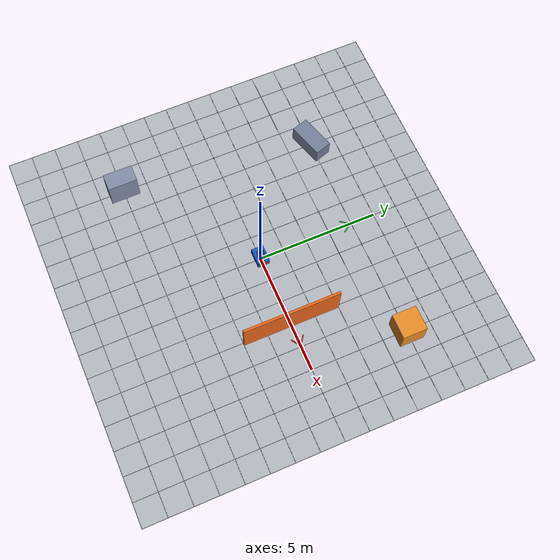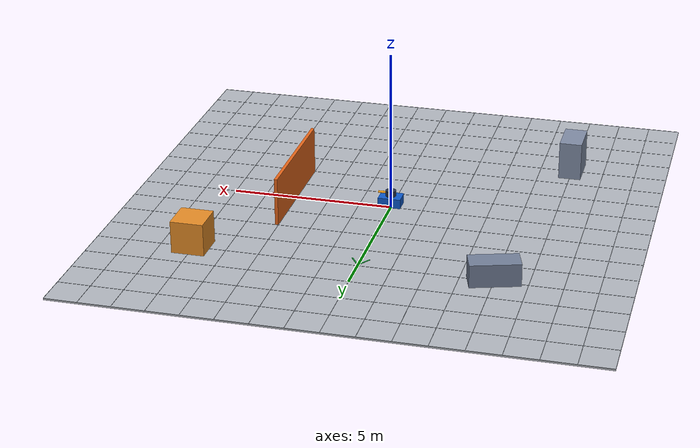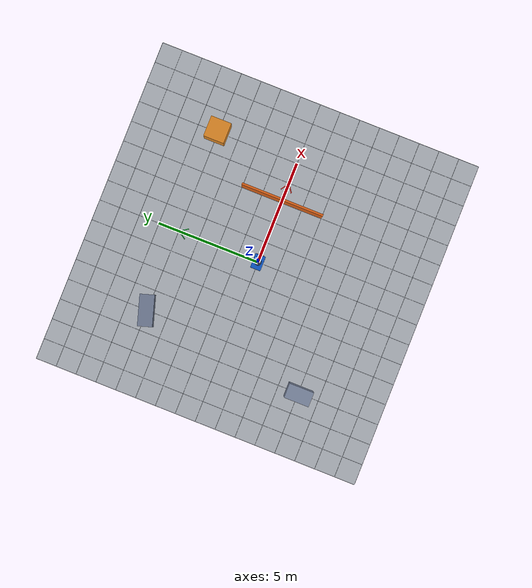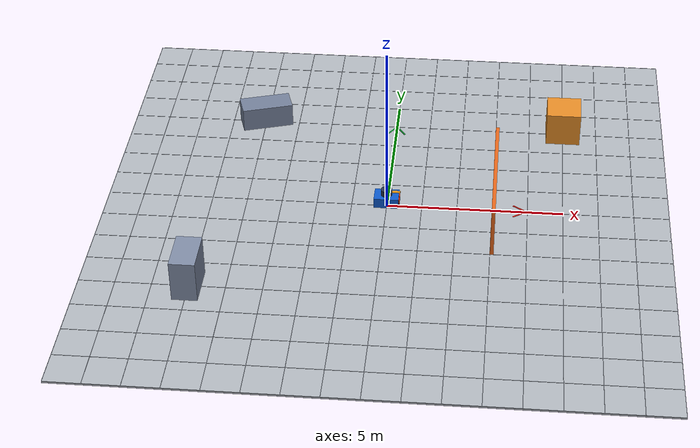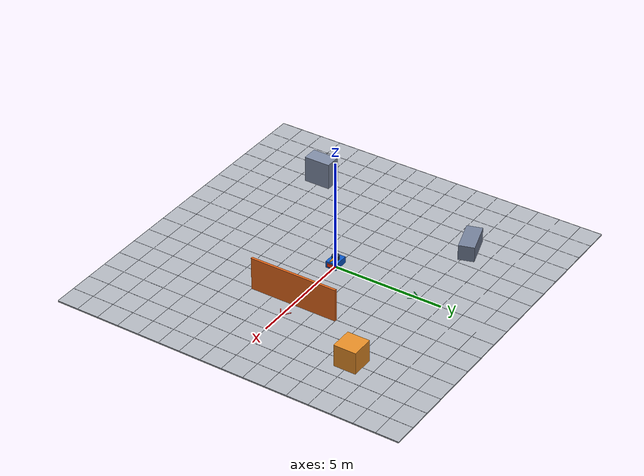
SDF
<?xml version='1.0' encoding='utf-8'?>
<sdf version="1.8">
  <!--Generated by lidar_assets.py: sensor feasibility world and known x=3 m wall.-->
  <world name="sentry_probe">
    <physics name="fixed_step" type="ignored">
      <max_step_size>0.01</max_step_size>
      <real_time_factor>1</real_time_factor>
    </physics>
    <gravity>0 0 0</gravity>
    <plugin filename="ignition-gazebo-physics-system" name="ignition::gazebo::systems::Physics" />
    <plugin filename="ignition-gazebo-user-commands-system" name="ignition::gazebo::systems::UserCommands" />
    <plugin filename="ignition-gazebo-scene-broadcaster-system" name="ignition::gazebo::systems::SceneBroadcaster" />
    <scene>
      <ambient>0.65 0.65 0.65 1</ambient>
      <background>0.82 0.86 0.9 1</background>
      <shadows>false</shadows>
    </scene>
    <light name="sun" type="directional">
      <pose>0 0 10 0 0 0</pose>
      <diffuse>0.8 0.8 0.8 1</diffuse>
      <specular>0.1 0.1 0.1 1</specular>
      <direction>-0.3 0.2 -1</direction>
      <cast_shadows>false</cast_shadows>
    </light>
    <gui fullscreen="false">
      <plugin filename="MinimalScene" name="3D View">
        <ignition-gui>
          <title>RM Sentry - Basic Navigation</title>
          <property type="bool" key="showTitleBar">false</property>
          <property type="string" key="state">docked</property>
        </ignition-gui>
        <engine>ogre2</engine>
        <scene>scene</scene>
        <ambient_light>0.65 0.65 0.65</ambient_light>
        <background_color>0.82 0.86 0.9</background_color>
        <camera_pose>4 -5 4.5 0 0.61 2.245</camera_pose>
      </plugin>
      <plugin filename="GzSceneManager" name="Scene Manager">
        <ignition-gui>
          <property type="bool" key="resizable">false</property>
          <property type="double" key="width">5</property>
          <property type="double" key="height">5</property>
          <property type="string" key="state">floating</property>
          <property type="bool" key="showTitleBar">false</property>
        </ignition-gui>
      </plugin>
      <plugin filename="InteractiveViewControl" name="View Control">
        <ignition-gui>
          <property type="bool" key="resizable">false</property>
          <property type="double" key="width">5</property>
          <property type="double" key="height">5</property>
          <property type="string" key="state">floating</property>
          <property type="bool" key="showTitleBar">false</property>
        </ignition-gui>
      </plugin>
      <plugin filename="WorldControl" name="World Control">
        <ignition-gui>
          <property type="bool" key="showTitleBar">false</property>
          <property type="string" key="state">floating</property>
          <property type="double" key="width">120</property>
          <property type="double" key="height">65</property>
          <property type="double" key="x">0</property>
          <property type="double" key="y">0</property>
        </ignition-gui>
        <play_pause>true</play_pause>
        <step>true</step>
        <start_paused>false</start_paused>
      </plugin>
      <plugin filename="WorldStats" name="World Stats">
        <ignition-gui>
          <property type="bool" key="showTitleBar">false</property>
          <property type="string" key="state">floating</property>
          <property type="double" key="width">280</property>
          <property type="double" key="height">110</property>
          <property type="double" key="x">0</property>
          <property type="double" key="y">70</property>
        </ignition-gui>
        <sim_time>true</sim_time>
        <real_time>true</real_time>
        <real_time_factor>true</real_time_factor>
        <iterations>true</iterations>
      </plugin>
    </gui>
    <model name="ground">
      <static>true</static>
      <link name="ground">
        <visual name="floor">
          <pose>0 0 -0.03 0 0 0</pose>
          <geometry>
            <box>
              <size>16 16 0.05</size>
            </box>
          </geometry>
          <material>
            <ambient>0.7 0.72 0.75 1</ambient>
            <diffuse>0.7 0.72 0.75 1</diffuse>
          </material>
        </visual>
      </link>
    </model>
    <include>
      <uri>model://sentry_lidar</uri>
    </include>
    <model name="grid_x_0">
      <static>true</static>
      <pose>-8 0 0.002 0 0 0</pose>
      <link name="link">
        <visual name="visual">
          <geometry>
            <box>
              <size>0.012 16 0.005</size>
            </box>
          </geometry>
          <material>
            <ambient>0.5 0.53 0.57 1</ambient>
            <diffuse>0.5 0.53 0.57 1</diffuse>
          </material>
        </visual>
      </link>
    </model>
    <model name="grid_y_0">
      <static>true</static>
      <pose>0 -8 0.003 0 0 0</pose>
      <link name="link">
        <visual name="visual">
          <geometry>
            <box>
              <size>16 0.012 0.005</size>
            </box>
          </geometry>
          <material>
            <ambient>0.5 0.53 0.57 1</ambient>
            <diffuse>0.5 0.53 0.57 1</diffuse>
          </material>
        </visual>
      </link>
    </model>
    <model name="grid_x_1">
      <static>true</static>
      <pose>-7 0 0.002 0 0 0</pose>
      <link name="link">
        <visual name="visual">
          <geometry>
            <box>
              <size>0.012 16 0.005</size>
            </box>
          </geometry>
          <material>
            <ambient>0.5 0.53 0.57 1</ambient>
            <diffuse>0.5 0.53 0.57 1</diffuse>
          </material>
        </visual>
      </link>
    </model>
    <model name="grid_y_1">
      <static>true</static>
      <pose>0 -7 0.003 0 0 0</pose>
      <link name="link">
        <visual name="visual">
          <geometry>
            <box>
              <size>16 0.012 0.005</size>
            </box>
          </geometry>
          <material>
            <ambient>0.5 0.53 0.57 1</ambient>
            <diffuse>0.5 0.53 0.57 1</diffuse>
          </material>
        </visual>
      </link>
    </model>
    <model name="grid_x_2">
      <static>true</static>
      <pose>-6 0 0.002 0 0 0</pose>
      <link name="link">
        <visual name="visual">
          <geometry>
            <box>
              <size>0.012 16 0.005</size>
            </box>
          </geometry>
          <material>
            <ambient>0.5 0.53 0.57 1</ambient>
            <diffuse>0.5 0.53 0.57 1</diffuse>
          </material>
        </visual>
      </link>
    </model>
    <model name="grid_y_2">
      <static>true</static>
      <pose>0 -6 0.003 0 0 0</pose>
      <link name="link">
        <visual name="visual">
          <geometry>
            <box>
              <size>16 0.012 0.005</size>
            </box>
          </geometry>
          <material>
            <ambient>0.5 0.53 0.57 1</ambient>
            <diffuse>0.5 0.53 0.57 1</diffuse>
          </material>
        </visual>
      </link>
    </model>
    <model name="grid_x_3">
      <static>true</static>
      <pose>-5 0 0.002 0 0 0</pose>
      <link name="link">
        <visual name="visual">
          <geometry>
            <box>
              <size>0.012 16 0.005</size>
            </box>
          </geometry>
          <material>
            <ambient>0.5 0.53 0.57 1</ambient>
            <diffuse>0.5 0.53 0.57 1</diffuse>
          </material>
        </visual>
      </link>
    </model>
    <model name="grid_y_3">
      <static>true</static>
      <pose>0 -5 0.003 0 0 0</pose>
      <link name="link">
        <visual name="visual">
          <geometry>
            <box>
              <size>16 0.012 0.005</size>
            </box>
          </geometry>
          <material>
            <ambient>0.5 0.53 0.57 1</ambient>
            <diffuse>0.5 0.53 0.57 1</diffuse>
          </material>
        </visual>
      </link>
    </model>
    <model name="grid_x_4">
      <static>true</static>
      <pose>-4 0 0.002 0 0 0</pose>
      <link name="link">
        <visual name="visual">
          <geometry>
            <box>
              <size>0.012 16 0.005</size>
            </box>
          </geometry>
          <material>
            <ambient>0.5 0.53 0.57 1</ambient>
            <diffuse>0.5 0.53 0.57 1</diffuse>
          </material>
        </visual>
      </link>
    </model>
    <model name="grid_y_4">
      <static>true</static>
      <pose>0 -4 0.003 0 0 0</pose>
      <link name="link">
        <visual name="visual">
          <geometry>
            <box>
              <size>16 0.012 0.005</size>
            </box>
          </geometry>
          <material>
            <ambient>0.5 0.53 0.57 1</ambient>
            <diffuse>0.5 0.53 0.57 1</diffuse>
          </material>
        </visual>
      </link>
    </model>
    <model name="grid_x_5">
      <static>true</static>
      <pose>-3 0 0.002 0 0 0</pose>
      <link name="link">
        <visual name="visual">
          <geometry>
            <box>
              <size>0.012 16 0.005</size>
            </box>
          </geometry>
          <material>
            <ambient>0.5 0.53 0.57 1</ambient>
            <diffuse>0.5 0.53 0.57 1</diffuse>
          </material>
        </visual>
      </link>
    </model>
    <model name="grid_y_5">
      <static>true</static>
      <pose>0 -3 0.003 0 0 0</pose>
      <link name="link">
        <visual name="visual">
          <geometry>
            <box>
              <size>16 0.012 0.005</size>
            </box>
          </geometry>
          <material>
            <ambient>0.5 0.53 0.57 1</ambient>
            <diffuse>0.5 0.53 0.57 1</diffuse>
          </material>
        </visual>
      </link>
    </model>
    <model name="grid_x_6">
      <static>true</static>
      <pose>-2 0 0.002 0 0 0</pose>
      <link name="link">
        <visual name="visual">
          <geometry>
            <box>
              <size>0.012 16 0.005</size>
            </box>
          </geometry>
          <material>
            <ambient>0.5 0.53 0.57 1</ambient>
            <diffuse>0.5 0.53 0.57 1</diffuse>
          </material>
        </visual>
      </link>
    </model>
    <model name="grid_y_6">
      <static>true</static>
      <pose>0 -2 0.003 0 0 0</pose>
      <link name="link">
        <visual name="visual">
          <geometry>
            <box>
              <size>16 0.012 0.005</size>
            </box>
          </geometry>
          <material>
            <ambient>0.5 0.53 0.57 1</ambient>
            <diffuse>0.5 0.53 0.57 1</diffuse>
          </material>
        </visual>
      </link>
    </model>
    <model name="grid_x_7">
      <static>true</static>
      <pose>-1 0 0.002 0 0 0</pose>
      <link name="link">
        <visual name="visual">
          <geometry>
            <box>
              <size>0.012 16 0.005</size>
            </box>
          </geometry>
          <material>
            <ambient>0.5 0.53 0.57 1</ambient>
            <diffuse>0.5 0.53 0.57 1</diffuse>
          </material>
        </visual>
      </link>
    </model>
    <model name="grid_y_7">
      <static>true</static>
      <pose>0 -1 0.003 0 0 0</pose>
      <link name="link">
        <visual name="visual">
          <geometry>
            <box>
              <size>16 0.012 0.005</size>
            </box>
          </geometry>
          <material>
            <ambient>0.5 0.53 0.57 1</ambient>
            <diffuse>0.5 0.53 0.57 1</diffuse>
          </material>
        </visual>
      </link>
    </model>
    <model name="grid_x_8">
      <static>true</static>
      <pose>0 0 0.002 0 0 0</pose>
      <link name="link">
        <visual name="visual">
          <geometry>
            <box>
              <size>0.012 16 0.005</size>
            </box>
          </geometry>
          <material>
            <ambient>0.5 0.53 0.57 1</ambient>
            <diffuse>0.5 0.53 0.57 1</diffuse>
          </material>
        </visual>
      </link>
    </model>
    <model name="grid_y_8">
      <static>true</static>
      <pose>0 0 0.003 0 0 0</pose>
      <link name="link">
        <visual name="visual">
          <geometry>
            <box>
              <size>16 0.012 0.005</size>
            </box>
          </geometry>
          <material>
            <ambient>0.5 0.53 0.57 1</ambient>
            <diffuse>0.5 0.53 0.57 1</diffuse>
          </material>
        </visual>
      </link>
    </model>
    <model name="grid_x_9">
      <static>true</static>
      <pose>1 0 0.002 0 0 0</pose>
      <link name="link">
        <visual name="visual">
          <geometry>
            <box>
              <size>0.012 16 0.005</size>
            </box>
          </geometry>
          <material>
            <ambient>0.5 0.53 0.57 1</ambient>
            <diffuse>0.5 0.53 0.57 1</diffuse>
          </material>
        </visual>
      </link>
    </model>
    <model name="grid_y_9">
      <static>true</static>
      <pose>0 1 0.003 0 0 0</pose>
      <link name="link">
        <visual name="visual">
          <geometry>
            <box>
              <size>16 0.012 0.005</size>
            </box>
          </geometry>
          <material>
            <ambient>0.5 0.53 0.57 1</ambient>
            <diffuse>0.5 0.53 0.57 1</diffuse>
          </material>
        </visual>
      </link>
    </model>
    <model name="grid_x_10">
      <static>true</static>
      <pose>2 0 0.002 0 0 0</pose>
      <link name="link">
        <visual name="visual">
          <geometry>
            <box>
              <size>0.012 16 0.005</size>
            </box>
          </geometry>
          <material>
            <ambient>0.5 0.53 0.57 1</ambient>
            <diffuse>0.5 0.53 0.57 1</diffuse>
          </material>
        </visual>
      </link>
    </model>
    <model name="grid_y_10">
      <static>true</static>
      <pose>0 2 0.003 0 0 0</pose>
      <link name="link">
        <visual name="visual">
          <geometry>
            <box>
              <size>16 0.012 0.005</size>
            </box>
          </geometry>
          <material>
            <ambient>0.5 0.53 0.57 1</ambient>
            <diffuse>0.5 0.53 0.57 1</diffuse>
          </material>
        </visual>
      </link>
    </model>
    <model name="grid_x_11">
      <static>true</static>
      <pose>3 0 0.002 0 0 0</pose>
      <link name="link">
        <visual name="visual">
          <geometry>
            <box>
              <size>0.012 16 0.005</size>
            </box>
          </geometry>
          <material>
            <ambient>0.5 0.53 0.57 1</ambient>
            <diffuse>0.5 0.53 0.57 1</diffuse>
          </material>
        </visual>
      </link>
    </model>
    <model name="grid_y_11">
      <static>true</static>
      <pose>0 3 0.003 0 0 0</pose>
      <link name="link">
        <visual name="visual">
          <geometry>
            <box>
              <size>16 0.012 0.005</size>
            </box>
          </geometry>
          <material>
            <ambient>0.5 0.53 0.57 1</ambient>
            <diffuse>0.5 0.53 0.57 1</diffuse>
          </material>
        </visual>
      </link>
    </model>
    <model name="grid_x_12">
      <static>true</static>
      <pose>4 0 0.002 0 0 0</pose>
      <link name="link">
        <visual name="visual">
          <geometry>
            <box>
              <size>0.012 16 0.005</size>
            </box>
          </geometry>
          <material>
            <ambient>0.5 0.53 0.57 1</ambient>
            <diffuse>0.5 0.53 0.57 1</diffuse>
          </material>
        </visual>
      </link>
    </model>
    <model name="grid_y_12">
      <static>true</static>
      <pose>0 4 0.003 0 0 0</pose>
      <link name="link">
        <visual name="visual">
          <geometry>
            <box>
              <size>16 0.012 0.005</size>
            </box>
          </geometry>
          <material>
            <ambient>0.5 0.53 0.57 1</ambient>
            <diffuse>0.5 0.53 0.57 1</diffuse>
          </material>
        </visual>
      </link>
    </model>
    <model name="grid_x_13">
      <static>true</static>
      <pose>5 0 0.002 0 0 0</pose>
      <link name="link">
        <visual name="visual">
          <geometry>
            <box>
              <size>0.012 16 0.005</size>
            </box>
          </geometry>
          <material>
            <ambient>0.5 0.53 0.57 1</ambient>
            <diffuse>0.5 0.53 0.57 1</diffuse>
          </material>
        </visual>
      </link>
    </model>
    <model name="grid_y_13">
      <static>true</static>
      <pose>0 5 0.003 0 0 0</pose>
      <link name="link">
        <visual name="visual">
          <geometry>
            <box>
              <size>16 0.012 0.005</size>
            </box>
          </geometry>
          <material>
            <ambient>0.5 0.53 0.57 1</ambient>
            <diffuse>0.5 0.53 0.57 1</diffuse>
          </material>
        </visual>
      </link>
    </model>
    <model name="grid_x_14">
      <static>true</static>
      <pose>6 0 0.002 0 0 0</pose>
      <link name="link">
        <visual name="visual">
          <geometry>
            <box>
              <size>0.012 16 0.005</size>
            </box>
          </geometry>
          <material>
            <ambient>0.5 0.53 0.57 1</ambient>
            <diffuse>0.5 0.53 0.57 1</diffuse>
          </material>
        </visual>
      </link>
    </model>
    <model name="grid_y_14">
      <static>true</static>
      <pose>0 6 0.003 0 0 0</pose>
      <link name="link">
        <visual name="visual">
          <geometry>
            <box>
              <size>16 0.012 0.005</size>
            </box>
          </geometry>
          <material>
            <ambient>0.5 0.53 0.57 1</ambient>
            <diffuse>0.5 0.53 0.57 1</diffuse>
          </material>
        </visual>
      </link>
    </model>
    <model name="grid_x_15">
      <static>true</static>
      <pose>7 0 0.002 0 0 0</pose>
      <link name="link">
        <visual name="visual">
          <geometry>
            <box>
              <size>0.012 16 0.005</size>
            </box>
          </geometry>
          <material>
            <ambient>0.5 0.53 0.57 1</ambient>
            <diffuse>0.5 0.53 0.57 1</diffuse>
          </material>
        </visual>
      </link>
    </model>
    <model name="grid_y_15">
      <static>true</static>
      <pose>0 7 0.003 0 0 0</pose>
      <link name="link">
        <visual name="visual">
          <geometry>
            <box>
              <size>16 0.012 0.005</size>
            </box>
          </geometry>
          <material>
            <ambient>0.5 0.53 0.57 1</ambient>
            <diffuse>0.5 0.53 0.57 1</diffuse>
          </material>
        </visual>
      </link>
    </model>
    <model name="grid_x_16">
      <static>true</static>
      <pose>8 0 0.002 0 0 0</pose>
      <link name="link">
        <visual name="visual">
          <geometry>
            <box>
              <size>0.012 16 0.005</size>
            </box>
          </geometry>
          <material>
            <ambient>0.5 0.53 0.57 1</ambient>
            <diffuse>0.5 0.53 0.57 1</diffuse>
          </material>
        </visual>
      </link>
    </model>
    <model name="grid_y_16">
      <static>true</static>
      <pose>0 8 0.003 0 0 0</pose>
      <link name="link">
        <visual name="visual">
          <geometry>
            <box>
              <size>16 0.012 0.005</size>
            </box>
          </geometry>
          <material>
            <ambient>0.5 0.53 0.57 1</ambient>
            <diffuse>0.5 0.53 0.57 1</diffuse>
          </material>
        </visual>
      </link>
    </model>
    <model name="positive_X_red">
      <static>true</static>
      <pose>2 0 0.012 0 0 0</pose>
      <link name="link">
        <visual name="visual">
          <geometry>
            <box>
              <size>4 0.04 0.01</size>
            </box>
          </geometry>
          <material>
            <ambient>0.9 0.1 0.06 1</ambient>
            <diffuse>0.9 0.1 0.06 1</diffuse>
          </material>
        </visual>
      </link>
    </model>
    <model name="positive_Y_green">
      <static>true</static>
      <pose>0 2 0.015 0 0 0</pose>
      <link name="link">
        <visual name="visual">
          <geometry>
            <box>
              <size>0.04 4 0.01</size>
            </box>
          </geometry>
          <material>
            <ambient>0.05 0.65 0.2 1</ambient>
            <diffuse>0.05 0.65 0.2 1</diffuse>
          </material>
        </visual>
      </link>
    </model>
    <model name="X_arrow_a">
      <static>true</static>
      <pose>3.8 0.12 0.018 0 0 -0.6</pose>
      <link name="link">
        <visual name="visual">
          <geometry>
            <box>
              <size>0.5 0.04 0.01</size>
            </box>
          </geometry>
          <material>
            <ambient>0.9 0.1 0.06 1</ambient>
            <diffuse>0.9 0.1 0.06 1</diffuse>
          </material>
        </visual>
      </link>
    </model>
    <model name="X_arrow_b">
      <static>true</static>
      <pose>3.8 -0.12 0.018 0 0 0.6</pose>
      <link name="link">
        <visual name="visual">
          <geometry>
            <box>
              <size>0.5 0.04 0.01</size>
            </box>
          </geometry>
          <material>
            <ambient>0.9 0.1 0.06 1</ambient>
            <diffuse>0.9 0.1 0.06 1</diffuse>
          </material>
        </visual>
      </link>
    </model>
    <model name="Y_arrow_a">
      <static>true</static>
      <pose>0.12 3.8 0.02 0 0 0.6</pose>
      <link name="link">
        <visual name="visual">
          <geometry>
            <box>
              <size>0.04 0.5 0.01</size>
            </box>
          </geometry>
          <material>
            <ambient>0.05 0.65 0.2 1</ambient>
            <diffuse>0.05 0.65 0.2 1</diffuse>
          </material>
        </visual>
      </link>
    </model>
    <model name="Y_arrow_b">
      <static>true</static>
      <pose>-0.12 3.8 0.02 0 0 -0.6</pose>
      <link name="link">
        <visual name="visual">
          <geometry>
            <box>
              <size>0.04 0.5 0.01</size>
            </box>
          </geometry>
          <material>
            <ambient>0.05 0.65 0.2 1</ambient>
            <diffuse>0.05 0.65 0.2 1</diffuse>
          </material>
        </visual>
      </link>
    </model>
    <model name="obstacle_1">
      <static>true</static>
      <pose>5 4 0.5 0 0 0</pose>
      <link name="link">
        <visual name="visual">
          <geometry>
            <box>
              <size>1 1 1</size>
            </box>
          </geometry>
          <material>
            <ambient>0.9 0.55 0.15 1</ambient>
            <diffuse>0.9 0.55 0.15 1</diffuse>
          </material>
        </visual>
      </link>
    </model>
    <model name="obstacle_2">
      <static>true</static>
      <pose>-4 4 0.35 0 0 0.3</pose>
      <link name="link">
        <visual name="visual">
          <geometry>
            <box>
              <size>1.5 0.7 0.7</size>
            </box>
          </geometry>
          <material>
            <ambient>0.45 0.5 0.6 1</ambient>
            <diffuse>0.45 0.5 0.6 1</diffuse>
          </material>
        </visual>
      </link>
    </model>
    <model name="obstacle_3">
      <static>true</static>
      <pose>-5 -4 0.6 0 0 0</pose>
      <link name="link">
        <visual name="visual">
          <geometry>
            <box>
              <size>0.7 1.2 1.2</size>
            </box>
          </geometry>
          <material>
            <ambient>0.5 0.55 0.65 1</ambient>
            <diffuse>0.5 0.55 0.65 1</diffuse>
          </material>
        </visual>
      </link>
    </model>
    <plugin filename="ignition-gazebo-sensors-system" name="ignition::gazebo::systems::Sensors">
      <render_engine>ogre2</render_engine>
    </plugin>
    <model name="calibration_wall">
      <static>true</static>
      <pose>3.05 0 0.75 0 0 0</pose>
      <link name="wall">
        <visual name="wall">
          <geometry>
            <box>
              <size>0.1 4 1.5</size>
            </box>
          </geometry>
          <material>
            <ambient>0.9 0.4 0.1 1</ambient>
            <diffuse>0.9 0.4 0.1 1</diffuse>
          </material>
        </visual>
      </link>
    </model>
  </world>
</sdf>

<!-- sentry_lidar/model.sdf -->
<sdf version="1.8">
  <!--Generated by lidar_assets.py: stage-one model with a real 360x4, 5 Hz lidar.-->
  <model name="sentry">
    <pose>0 0 0 0 0 0</pose>
    <link name="base_link">
      <gravity>false</gravity>
      <inertial>
        <mass>10</mass>
        <inertia>
          <ixx>1</ixx>
          <iyy>1</iyy>
          <izz>1</izz>
        </inertia>
      </inertial>
      <visual name="body">
        <pose>0 0 0.25 0 0 0</pose>
        <geometry>
          <box>
            <size>0.7 0.5 0.3</size>
          </box>
        </geometry>
        <material>
          <ambient>0.05 0.3 0.65 1</ambient>
          <diffuse>0.05 0.35 0.8 1</diffuse>
        </material>
      </visual>
      <visual name="front">
        <pose>0.36 0 0.25 0 0 0</pose>
        <geometry>
          <box>
            <size>0.03 0.35 0.15</size>
          </box>
        </geometry>
        <material>
          <ambient>1 0.2 0.05 1</ambient>
          <diffuse>1 0.2 0.05 1</diffuse>
        </material>
      </visual>
      <visual name="turret">
        <pose>0 0 0.49 0 0 0</pose>
        <geometry>
          <cylinder>
            <radius>0.16</radius>
            <length>0.18</length>
          </cylinder>
        </geometry>
        <material>
          <ambient>0.1 0.14 0.2 1</ambient>
          <diffuse>0.15 0.2 0.3 1</diffuse>
        </material>
      </visual>
      <visual name="front_pointer">
        <pose>0.24 0 0.5 0 1.5707963 0</pose>
        <geometry>
          <cylinder>
            <radius>0.035</radius>
            <length>0.3</length>
          </cylinder>
        </geometry>
        <material>
          <ambient>1 0.65 0.1 1</ambient>
          <diffuse>1 0.65 0.1 1</diffuse>
        </material>
      </visual>
      <sensor name="lidar_sensor" type="gpu_lidar">
        <pose>0 0 0.7 0 0 0</pose>
        <topic>/sentry/lidar</topic>
        <update_rate>5</update_rate>
        <always_on>true</always_on>
        <visualize>false</visualize>
        <lidar>
          <scan>
            <horizontal>
              <samples>360</samples>
              <resolution>1</resolution>
              <min_angle>-3.141592653589793</min_angle>
              <max_angle>3.141592653589793</max_angle>
            </horizontal>
            <vertical>
              <samples>4</samples>
              <resolution>1</resolution>
              <min_angle>-0.1</min_angle>
              <max_angle>0.1</max_angle>
            </vertical>
          </scan>
          <range>
            <min>0.2</min>
            <max>10</max>
            <resolution>0.01</resolution>
          </range>
        </lidar>
      </sensor>
    </link>
    <plugin filename="ignition-gazebo-velocity-control-system" name="ignition::gazebo::systems::VelocityControl">
      <topic>/model/sentry/cmd_vel</topic>
    </plugin>
    <plugin filename="libsentry_resume_guard.so" name="sentry_gazebo::ResumeGuard" />
    <plugin filename="ignition-gazebo-odometry-publisher-system" name="ignition::gazebo::systems::OdometryPublisher">
      <odom_frame>odom</odom_frame>
      <robot_base_frame>base_link</robot_base_frame>
      <dimensions>2</dimensions>
      <odom_publish_frequency>50</odom_publish_frequency>
      <odom_topic>/model/sentry/odometry</odom_topic>
    </plugin>
  </model>
</sdf>
